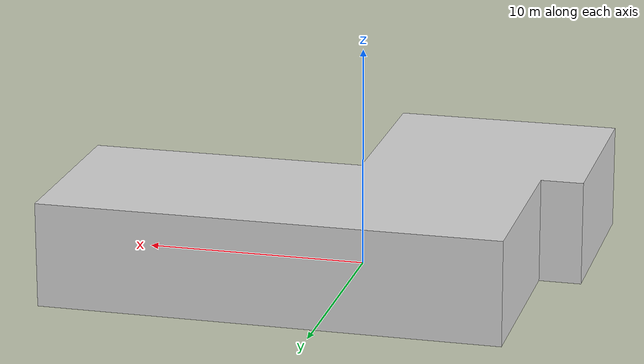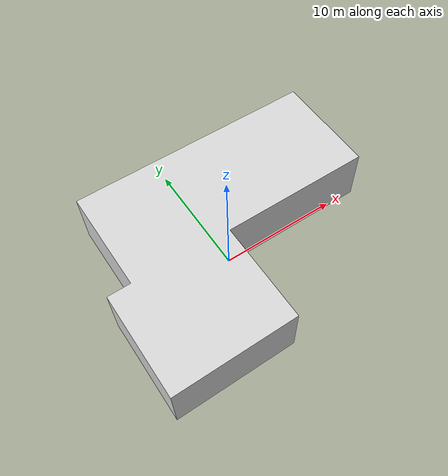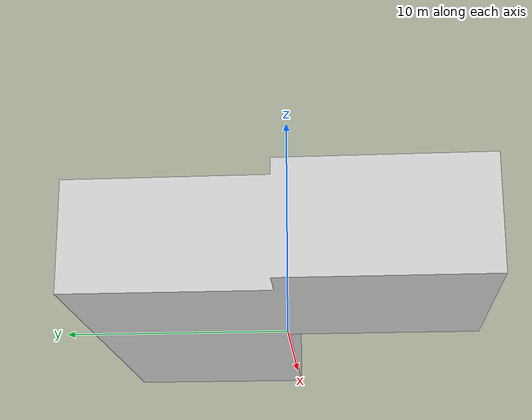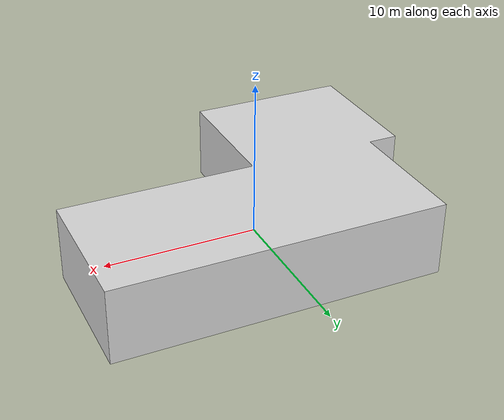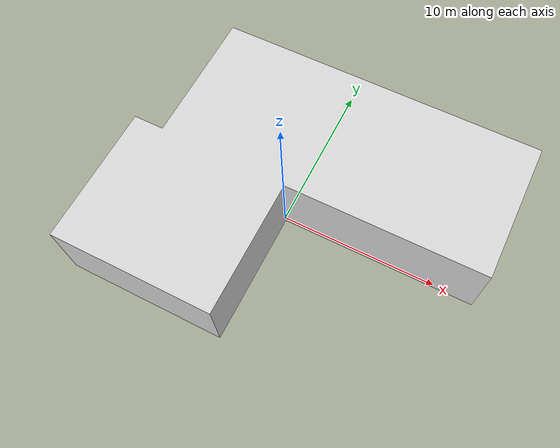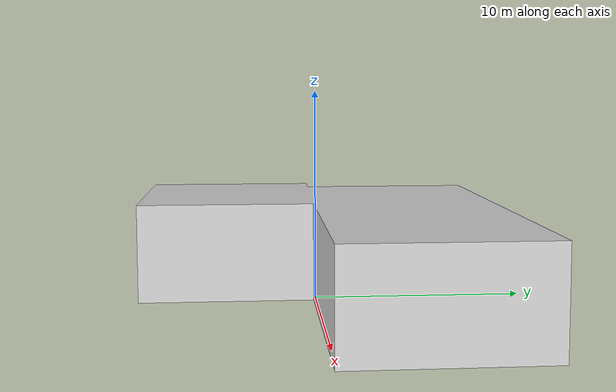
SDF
<?xml version="1.0" encoding="utf-8"?>
<sdf version="1.6">

  <model name="FAR">
    <static>true</static>  <!-- 设为静态模型，不受物理影响 -->

    <!-- 加载实验室整体模型 -->
    <link name="FAR">
      <collision name="lab_collision">
        <geometry>
          <mesh>
            <uri>model://FAR/meshes/FAR.stl</uri>  <!-- 物理碰撞 -->
          </mesh>
        </geometry>
      </collision>

      <visual name="lab_visual">
        <geometry>
          <mesh>
            <uri>model://FAR/meshes/FAR.dae</uri>  <!-- 渲染模型 -->
          </mesh>
        </geometry>
        <material>
          <script>
            <uri>model://FAR/materials/materials.sdf</uri>  <!-- 关联材质 -->
            <name>LabMaterial</name>
          </script>
        </material>
      </visual>
    </link>
  </model>

</sdf>
